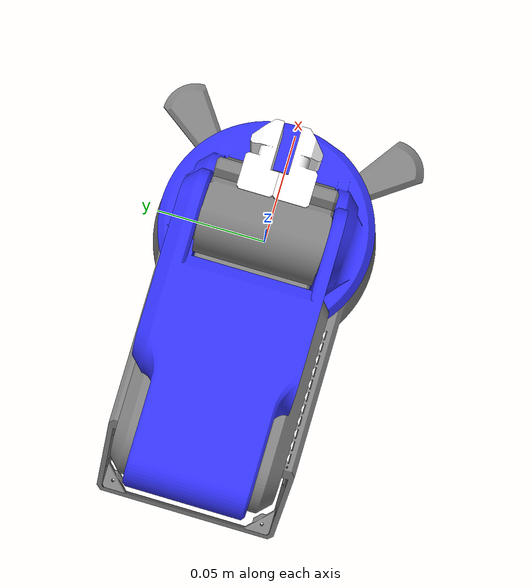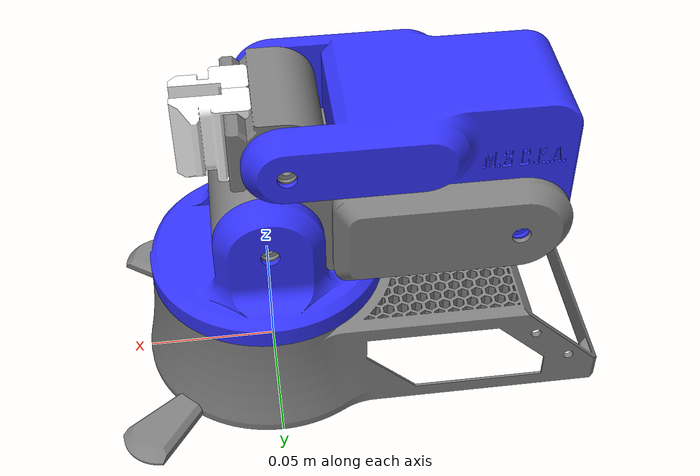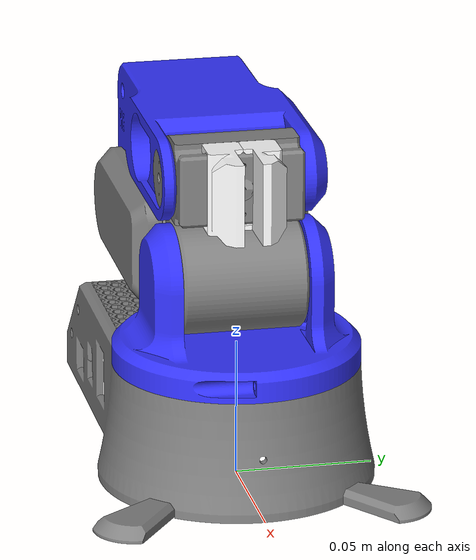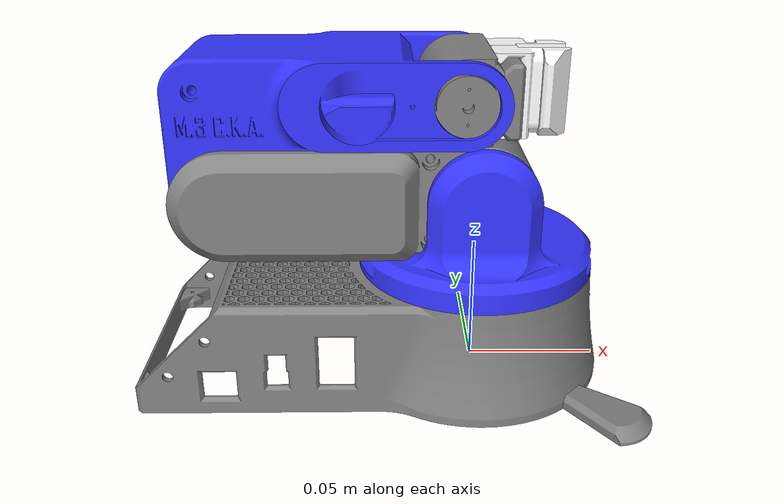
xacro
<?xml version="1.0"?>
<robot xmlns:xacro="http://www.ros.org/wiki/xacro" name="manipulator">

  <xacro:arg name="serial_port" default="/dev/ttyUSB0"/>
  <xacro:arg name="baud_rate" default="9600"/>
  <xacro:arg name="write_rate_hz" default="20"/>
  <xacro:arg name="dry_run" default="false"/>

  <!-- 1. 공통 로봇 모델 포함 -->
  <xacro:include filename="$(find my_manipulator)/urdf/manipulator.xacro" />

  <ros2_control name="RealRobot" type="system">
    <hardware>
      <!-- 나중에 만들 실제 로봇용 하드웨어 인터페이스 플러그인 -->
      <plugin>arduino_hardware_interface/ArduinoHardwareInterface</plugin>
      <param name="serial_port">$(arg serial_port)</param>
      <param name="baud_rate">$(arg baud_rate)</param>
      <param name="write_rate_hz">$(arg write_rate_hz)</param>
      <param name="dry_run">$(arg dry_run)</param>
    </hardware>
    <joint name="joint_1">
      <param name="servo_min_angle">0</param>
      <param name="servo_max_angle">180</param>
      <command_interface name="position">
        <param name="min">${-pi/2}</param>
        <param name="max">${pi/2}</param>
      </command_interface>
      <state_interface name="position"><param name="initial_value">0</param></state_interface>
    </joint>
    <joint name="joint_2">
      <param name="servo_min_angle">0</param>
      <param name="servo_max_angle">180</param>
      <command_interface name="position">
        <param name="min">0</param>
        <param name="max">${pi}</param>
      </command_interface>
      <state_interface name="position"><param name="initial_value">0</param></state_interface>
    </joint>
    <joint name="joint_3">
      <param name="servo_min_angle">0</param>
      <param name="servo_max_angle">180</param>
      <command_interface name="position">
        <param name="min">${-pi}</param>
        <param name="max">0</param>
      </command_interface>
      <state_interface name="position"><param name="initial_value">0</param></state_interface>
    </joint>
    <joint name="joint_4">
      <param name="servo_min_angle">0</param>
      <param name="servo_max_angle">180</param>
      <command_interface name="position">
        <!-- joint_4 servo is mounted opposite to the ROS joint direction. -->
        <param name="min">${pi/2}</param>
        <param name="max">${-pi/2}</param>
      </command_interface>
      <state_interface name="position"><param name="initial_value">0</param></state_interface>
    </joint>
    <joint name="joint_5_left">
      <param name="servo_min_angle">30</param>
      <param name="servo_max_angle">90</param>
      <command_interface name="position">
        <param name="min">0.008</param>
        <param name="max">0</param>
      </command_interface>
      <state_interface name="position"><param name="initial_value">0</param></state_interface>
    </joint>
  </ros2_control>

</robot>

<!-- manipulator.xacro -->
<robot xmlns:xacro="http://www.ros.org/wiki/xacro" name="manipulator">

  <xacro:property name="mesh_scale" value="0.001 0.001 0.001" />
  <xacro:property name="default_inertia" value="1e-6" />

  <material name="White"><color rgba="1 1 1 1"/></material>
  <material name="Blue"><color rgba="0.2 0.2 1 1"/></material>
  <material name="Grey"><color rgba="0.5 0.5 0.5 1"/></material>

  <!-- 링크 생성을 위한 매크로 -->
  <xacro:macro name="create_link" params="link_name mass origin_xyz gazebo_material">
    <link name="${link_name}">
      <visual>
        <geometry>
          <mesh filename="package://my_manipulator/meshes/${link_name}.stl" scale="${mesh_scale}"/>
        </geometry>
        <material name="${gazebo_material}"/>
      </visual>
      <collision>
        <geometry>
          <mesh filename="package://my_manipulator/meshes/${link_name}.stl" scale="${mesh_scale}"/>
        </geometry>
      </collision>
      <inertial>
        <mass value="${mass}"/>
        <origin xyz="${origin_xyz}" rpy="0 0 0"/>
        <inertia ixx="${default_inertia}" ixy="0.0" ixz="0.0" iyy="${default_inertia}" iyz="0.0" izz="${default_inertia}"/>
      </inertial>
    </link>
    <!-- Gazebo에서 사용할 색상 -->
    <gazebo reference="${link_name}">
      <material>Gazebo/${gazebo_material}</material>
    </gazebo>
  </xacro:macro>

  <!-- 회전 조인트 생성을 위한 매크로 -->
  <xacro:macro name="create_revolute_joint" params="joint_name parent child origin_xyz axis_xyz lower_limit upper_limit">
    <joint name="${joint_name}" type="revolute">
      <parent link="${parent}"/>
      <child link="${child}"/>
      <origin xyz="${origin_xyz}" rpy="0 0 0"/>
      <axis xyz="${axis_xyz}"/>
      <limit lower="${lower_limit}" upper="${upper_limit}" effort="100" velocity="1"/>
    </joint>
  </xacro:macro>

  <!-- ros2_control 조인트 인터페이스를 위한 매크로 -->
  <xacro:macro name="ros2_control_joint" params="joint_name min_pos max_pos initial_pos=0.0">
    <joint name="${joint_name}">
      <command_interface name="position">
        <param name="min">${min_pos}</param>
        <param name="max">${max_pos}</param>
      </command_interface>
      <state_interface name="position">
        <param name="initial_value">${initial_pos}</param>
      </state_interface>
    </joint>
  </xacro:macro>

  <!-- World Link와 Base Link를 연결하는 고정 조인트 -->
  <link name="world" />
  <joint name="world_joint" type="fixed">
    <parent link="world"/>
    <child link="link_1"/>
    <origin xyz="0 0 0" rpy="0 0 0"/>
  </joint>

  <!-- 매크로를 사용하여 링크 생성 -->
  <xacro:create_link link_name="link_1" mass="0.01" origin_xyz="0.04 0.00 0.00" gazebo_material="Grey"/>
  <xacro:create_link link_name="link_2" mass="0.06" origin_xyz="0.00 0.00 0.01" gazebo_material="Blue"/>
  <xacro:create_link link_name="link_3" mass="0.08" origin_xyz="-0.04 0.00 0.00" gazebo_material="Grey"/>
  <xacro:create_link link_name="link_4" mass="0.07" origin_xyz="0.02 0.00 0.03" gazebo_material="Blue"/>
  <xacro:create_link link_name="link_5" mass="0.03" origin_xyz="0.00 0.00 0.00" gazebo_material="Grey"/>
  <xacro:create_link link_name="link_6" mass="0.01" origin_xyz="0.01 0.01 0.00" gazebo_material="White"/>
  <xacro:create_link link_name="link_7" mass="0.01" origin_xyz="0.01 -0.01 0.00" gazebo_material="White"/>

  <!-- 매크로를 사용하여 회전 조인트 생성 -->
  <xacro:create_revolute_joint joint_name="joint_1" parent="link_1" child="link_2" origin_xyz="0 0 0.043"    axis_xyz="0 0 1" lower_limit="${-pi/2}" upper_limit="${pi/2}"/>
  <xacro:create_revolute_joint joint_name="joint_2" parent="link_2" child="link_3" origin_xyz="0 0 0.0325"   axis_xyz="0 1 0" lower_limit="0"        upper_limit="${pi}"/>
  <xacro:create_revolute_joint joint_name="joint_3" parent="link_3" child="link_4" origin_xyz="-0.09 0 0"    axis_xyz="0 1 0" lower_limit="${-pi}"    upper_limit="0"/>
  <xacro:create_revolute_joint joint_name="joint_4" parent="link_4" child="link_5" origin_xyz="0.0827 0 0.0355" axis_xyz="0 1 0" lower_limit="${-pi/2}" upper_limit="${pi/2}"/>

  <!-- 그리퍼 조인트 (Prismatic & Mimic) -->
  <joint name="joint_5_left" type="prismatic">
    <parent link="link_5"/>
    <child link="link_6"/>
    <origin xyz="0.019 0.00 0" rpy="0 0 0"/>
    <axis xyz="0 1 0"/>
    <limit lower="0" upper="0.008" effort="100" velocity="1"/>
  </joint>

  <joint name="joint_5_right" type="prismatic">
    <parent link="link_5"/>
    <child link="link_7"/>
    <origin xyz="0.019 0.00 0" rpy="0 0 0"/>
    <axis xyz="0 -1 0"/>
    <limit lower="0" upper="0.008" effort="100" velocity="1"/>
    <mimic joint="joint_5_left" multiplier="1" offset="0"/>
  </joint>

</robot>
